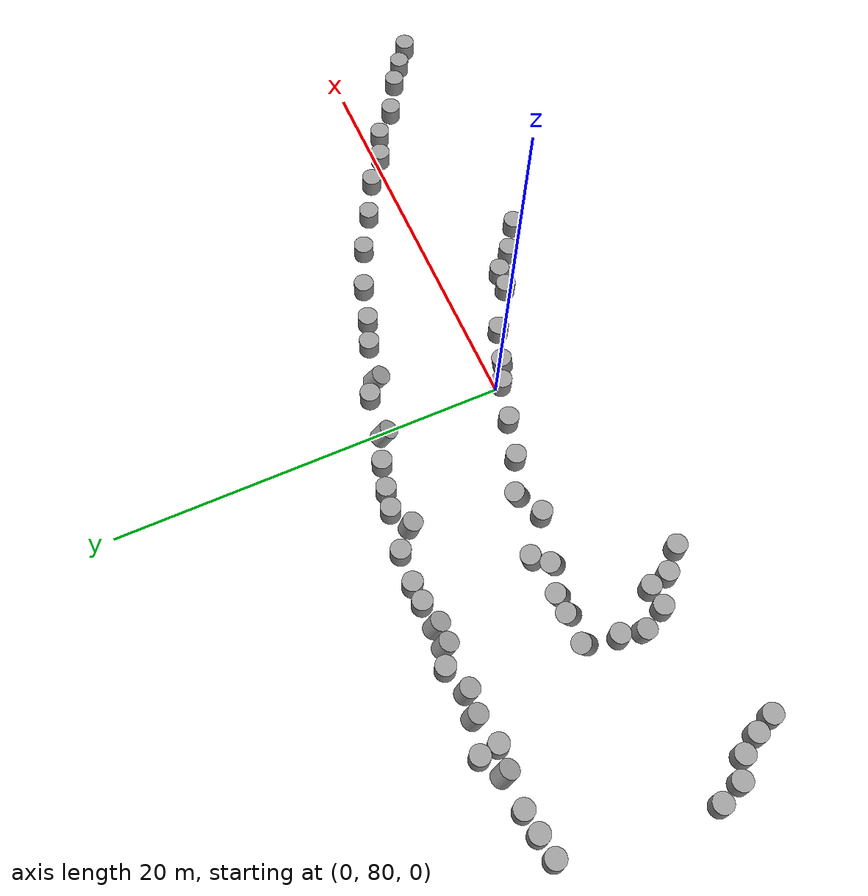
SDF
<sdf version="1.7">
 <world name="default">
  <model name="unit_cylinder_clone_108">
   <pose>21.981 75.3969 0.454309 0.00428 -0.002742 -0.000518</pose>
   <link name="link">
    <inertial>
     <mass>1</mass>
     <inertia><ixx>0.145833</ixx><ixy>0</ixy><ixz>0</ixz><iyy>0.145833</iyy><iyz>0</iyz><izz>0.125</izz></inertia>
    </inertial>
    <collision name="collision">
     <geometry><cylinder><radius>0.5</radius><length>1</length></cylinder></geometry>
    </collision>
    <visual name="visual">
     <geometry><cylinder><radius>0.5</radius><length>1</length></cylinder></geometry>
     <material>
      <script><name>Gazebo/Grey</name><uri>file://media/materials/scripts/gazebo.material</uri></script>
     </material>
    </visual>
   </link>
  </model>
  <model name="unit_cylinder_clone_109">
   <pose>20.9005 76.2129 0.454841 0.004279 -0.002742 -0.000491</pose>
   <link name="link">
    <inertial>
     <mass>1</mass>
     <inertia><ixx>0.145833</ixx><ixy>0</ixy><ixz>0</ixz><iyy>0.145833</iyy><iyz>0</iyz><izz>0.125</izz></inertia>
    </inertial>
    <collision name="collision">
     <geometry><cylinder><radius>0.5</radius><length>1</length></cylinder></geometry>
    </collision>
    <visual name="visual">
     <geometry><cylinder><radius>0.5</radius><length>1</length></cylinder></geometry>
     <material>
      <script><name>Gazebo/Grey</name><uri>file://media/materials/scripts/gazebo.material</uri></script>
     </material>
    </visual>
   </link>
  </model>
  <model name="unit_cylinder_clone_110">
   <pose>19.7918 76.9983 0.455156 0.004291 -0.002747 -0.000468</pose>
   <link name="link">
    <inertial>
     <mass>1</mass>
     <inertia><ixx>0.145833</ixx><ixy>0</ixy><ixz>0</ixz><iyy>0.145833</iyy><iyz>0</iyz><izz>0.125</izz></inertia>
    </inertial>
    <collision name="collision">
     <geometry><cylinder><radius>0.5</radius><length>1</length></cylinder></geometry>
    </collision>
    <visual name="visual">
     <geometry><cylinder><radius>0.5</radius><length>1</length></cylinder></geometry>
     <material>
      <script><name>Gazebo/Grey</name><uri>file://media/materials/scripts/gazebo.material</uri></script>
     </material>
    </visual>
   </link>
  </model>
  <model name="unit_cylinder_clone_111">
   <pose>18.025 77.9763 0.454441 0.004261 -0.002794 -0.000531</pose>
   <link name="link">
    <inertial>
     <mass>1</mass>
     <inertia><ixx>0.145833</ixx><ixy>0</ixy><ixz>0</ixz><iyy>0.145833</iyy><iyz>0</iyz><izz>0.125</izz></inertia>
    </inertial>
    <collision name="collision">
     <geometry><cylinder><radius>0.5</radius><length>1</length></cylinder></geometry>
    </collision>
    <visual name="visual">
     <geometry><cylinder><radius>0.5</radius><length>1</length></cylinder></geometry>
     <material>
      <script><name>Gazebo/Grey</name><uri>file://media/materials/scripts/gazebo.material</uri></script>
     </material>
    </visual>
   </link>
  </model>
  <model name="unit_cylinder_clone_112">
   <pose>16.696 79.2107 0.455997 0.004258 -0.002788 -0.000549</pose>
   <link name="link">
    <inertial>
     <mass>1</mass>
     <inertia><ixx>0.145833</ixx><ixy>0</ixy><ixz>0</ixz><iyy>0.145833</iyy><iyz>0</iyz><izz>0.125</izz></inertia>
    </inertial>
    <collision name="collision">
     <geometry><cylinder><radius>0.5</radius><length>1</length></cylinder></geometry>
    </collision>
    <visual name="visual">
     <geometry><cylinder><radius>0.5</radius><length>1</length></cylinder></geometry>
     <material>
      <script><name>Gazebo/Grey</name><uri>file://media/materials/scripts/gazebo.material</uri></script>
     </material>
    </visual>
   </link>
  </model>
  <model name="unit_cylinder_clone_113">
   <pose>15.3365 79.7585 0.454518 0.004262 -0.002793 -0.000598</pose>
   <link name="link">
    <inertial>
     <mass>1</mass>
     <inertia><ixx>0.145833</ixx><ixy>0</ixy><ixz>0</ixz><iyy>0.145833</iyy><iyz>0</iyz><izz>0.125</izz></inertia>
    </inertial>
    <collision name="collision">
     <geometry><cylinder><radius>0.5</radius><length>1</length></cylinder></geometry>
    </collision>
    <visual name="visual">
     <geometry><cylinder><radius>0.5</radius><length>1</length></cylinder></geometry>
     <material>
      <script><name>Gazebo/Grey</name><uri>file://media/materials/scripts/gazebo.material</uri></script>
     </material>
    </visual>
   </link>
  </model>
  <model name="unit_cylinder_clone_114">
   <pose>13.9497 80.8535 0.464947 0.02121 -0.012268 0.06693</pose>
   <link name="link">
    <inertial>
     <mass>1</mass>
     <inertia><ixx>0.145833</ixx><ixy>0</ixy><ixz>0</ixz><iyy>0.145833</iyy><iyz>0</iyz><izz>0.125</izz></inertia>
    </inertial>
    <collision name="collision">
     <geometry><cylinder><radius>0.5</radius><length>1</length></cylinder></geometry>
    </collision>
    <visual name="visual">
     <geometry><cylinder><radius>0.5</radius><length>1</length></cylinder></geometry>
     <material>
      <script><name>Gazebo/Grey</name><uri>file://media/materials/scripts/gazebo.material</uri></script>
     </material>
    </visual>
   </link>
  </model>
  <model name="unit_cylinder_clone_115">
   <pose>12.0349 81.8268 0.454119 0.004292 -0.002805 -0.000335</pose>
   <link name="link">
    <inertial>
     <mass>1</mass>
     <inertia><ixx>0.145833</ixx><ixy>0</ixy><ixz>0</ixz><iyy>0.145833</iyy><iyz>0</iyz><izz>0.125</izz></inertia>
    </inertial>
    <collision name="collision">
     <geometry><cylinder><radius>0.5</radius><length>1</length></cylinder></geometry>
    </collision>
    <visual name="visual">
     <geometry><cylinder><radius>0.5</radius><length>1</length></cylinder></geometry>
     <material>
      <script><name>Gazebo/Grey</name><uri>file://media/materials/scripts/gazebo.material</uri></script>
     </material>
    </visual>
   </link>
  </model>
  <model name="unit_cylinder_clone_116">
   <pose>10.1111 82.934 0.453853 0.00467 -0.002143 0.001131</pose>
   <link name="link">
    <inertial>
     <mass>1</mass>
     <inertia><ixx>0.145833</ixx><ixy>0</ixy><ixz>0</ixz><iyy>0.145833</iyy><iyz>0</iyz><izz>0.125</izz></inertia>
    </inertial>
    <collision name="collision">
     <geometry><cylinder><radius>0.5</radius><length>1</length></cylinder></geometry>
    </collision>
    <visual name="visual">
     <geometry><cylinder><radius>0.5</radius><length>1</length></cylinder></geometry>
     <material>
      <script><name>Gazebo/Grey</name><uri>file://media/materials/scripts/gazebo.material</uri></script>
     </material>
    </visual>
   </link>
  </model>
  <model name="unit_cylinder_clone_117">
   <pose>7.95155 83.8398 0.453717 0.00449 -0.001961 -0.00254</pose>
   <link name="link">
    <inertial>
     <mass>1</mass>
     <inertia><ixx>0.145833</ixx><ixy>0</ixy><ixz>0</ixz><iyy>0.145833</iyy><iyz>0</iyz><izz>0.125</izz></inertia>
    </inertial>
    <collision name="collision">
     <geometry><cylinder><radius>0.5</radius><length>1</length></cylinder></geometry>
    </collision>
    <visual name="visual">
     <geometry><cylinder><radius>0.5</radius><length>1</length></cylinder></geometry>
     <material>
      <script><name>Gazebo/Grey</name><uri>file://media/materials/scripts/gazebo.material</uri></script>
     </material>
    </visual>
   </link>
  </model>
  <model name="unit_cylinder_clone_118">
   <pose>6.045 84.4184 0.452686 0.004187 -0.001657 -0.037985</pose>
   <link name="link">
    <inertial>
     <mass>1</mass>
     <inertia><ixx>0.145833</ixx><ixy>0</ixy><ixz>0</ixz><iyy>0.145833</iyy><iyz>0</iyz><izz>0.125</izz></inertia>
    </inertial>
    <collision name="collision">
     <geometry><cylinder><radius>0.5</radius><length>1</length></cylinder></geometry>
    </collision>
    <visual name="visual">
     <geometry><cylinder><radius>0.5</radius><length>1</length></cylinder></geometry>
     <material>
      <script><name>Gazebo/Grey</name><uri>file://media/materials/scripts/gazebo.material</uri></script>
     </material>
    </visual>
   </link>
  </model>
  <model name="unit_cylinder_clone_119">
   <pose>4.71415 84.9047 0.452257 0.00407 -0.001759 -0.007313</pose>
   <link name="link">
    <inertial>
     <mass>1</mass>
     <inertia><ixx>0.145833</ixx><ixy>0</ixy><ixz>0</ixz><iyy>0.145833</iyy><iyz>0</iyz><izz>0.125</izz></inertia>
    </inertial>
    <collision name="collision">
     <geometry><cylinder><radius>0.5</radius><length>1</length></cylinder></geometry>
    </collision>
    <visual name="visual">
     <geometry><cylinder><radius>0.5</radius><length>1</length></cylinder></geometry>
     <material>
      <script><name>Gazebo/Grey</name><uri>file://media/materials/scripts/gazebo.material</uri></script>
     </material>
    </visual>
   </link>
  </model>
  <model name="unit_cylinder_clone_120">
   <pose>2.77753 85.333 0.428937 0.468622 -0.187616 -0.062156</pose>
   <link name="link">
    <inertial>
     <mass>1</mass>
     <inertia><ixx>0.145833</ixx><ixy>0</ixy><ixz>0</ixz><iyy>0.145833</iyy><iyz>0</iyz><izz>0.125</izz></inertia>
    </inertial>
    <collision name="collision">
     <geometry><cylinder><radius>0.5</radius><length>1</length></cylinder></geometry>
    </collision>
    <visual name="visual">
     <geometry><cylinder><radius>0.5</radius><length>1</length></cylinder></geometry>
     <material>
      <script><name>Gazebo/Grey</name><uri>file://media/materials/scripts/gazebo.material</uri></script>
     </material>
    </visual>
   </link>
  </model>
  <model name="unit_cylinder_clone_121">
   <pose>1.98412 86.009 0.45199 0.003957 -0.001317 -0.007707</pose>
   <link name="link">
    <inertial>
     <mass>1</mass>
     <inertia><ixx>0.145833</ixx><ixy>0</ixy><ixz>0</ixz><iyy>0.145833</iyy><iyz>0</iyz><izz>0.125</izz></inertia>
    </inertial>
    <collision name="collision">
     <geometry><cylinder><radius>0.5</radius><length>1</length></cylinder></geometry>
    </collision>
    <visual name="visual">
     <geometry><cylinder><radius>0.5</radius><length>1</length></cylinder></geometry>
     <material>
      <script><name>Gazebo/Grey</name><uri>file://media/materials/scripts/gazebo.material</uri></script>
     </material>
    </visual>
   </link>
  </model>
  <model name="unit_cylinder_clone_122">
   <pose>-0.166714 86.1896 0.432368 0.5197 0.021411 -0.252502</pose>
   <link name="link">
    <inertial>
     <mass>1</mass>
     <inertia><ixx>0.145833</ixx><ixy>0</ixy><ixz>0</ixz><iyy>0.145833</iyy><iyz>0</iyz><izz>0.125</izz></inertia>
    </inertial>
    <collision name="collision">
     <geometry><cylinder><radius>0.5</radius><length>1</length></cylinder></geometry>
    </collision>
    <visual name="visual">
     <geometry><cylinder><radius>0.5</radius><length>1</length></cylinder></geometry>
     <material>
      <script><name>Gazebo/Grey</name><uri>file://media/materials/scripts/gazebo.material</uri></script>
     </material>
    </visual>
   </link>
  </model>
  <model name="unit_cylinder_clone_123">
   <pose>-1.58955 86.8966 0.45227 0.004388 -0.000964 -0.000424</pose>
   <link name="link">
    <inertial>
     <mass>1</mass>
     <inertia><ixx>0.145833</ixx><ixy>0</ixy><ixz>0</ixz><iyy>0.145833</iyy><iyz>0</iyz><izz>0.125</izz></inertia>
    </inertial>
    <collision name="collision">
     <geometry><cylinder><radius>0.5</radius><length>1</length></cylinder></geometry>
    </collision>
    <visual name="visual">
     <geometry><cylinder><radius>0.5</radius><length>1</length></cylinder></geometry>
     <material>
      <script><name>Gazebo/Grey</name><uri>file://media/materials/scripts/gazebo.material</uri></script>
     </material>
    </visual>
   </link>
  </model>
  <model name="unit_cylinder_clone_124">
   <pose>2.88555 78.5504 0.451269 0 1e-06 -0.000547</pose>
   <link name="link">
    <inertial>
     <mass>1</mass>
     <inertia><ixx>0.145833</ixx><ixy>0</ixy><ixz>0</ixz><iyy>0.145833</iyy><iyz>0</iyz><izz>0.125</izz></inertia>
    </inertial>
    <collision name="collision">
     <geometry><cylinder><radius>0.5</radius><length>1</length></cylinder></geometry>
    </collision>
    <visual name="visual">
     <geometry><cylinder><radius>0.5</radius><length>1</length></cylinder></geometry>
     <material>
      <script><name>Gazebo/Grey</name><uri>file://media/materials/scripts/gazebo.material</uri></script>
     </material>
    </visual>
   </link>
  </model>
  <model name="unit_cylinder_clone_125">
   <pose>5.03777 77.1231 0.451276 -3e-06 -2e-06 -0.012129</pose>
   <link name="link">
    <inertial>
     <mass>1</mass>
     <inertia><ixx>0.145833</ixx><ixy>0</ixy><ixz>0</ixz><iyy>0.145833</iyy><iyz>0</iyz><izz>0.125</izz></inertia>
    </inertial>
    <collision name="collision">
     <geometry><cylinder><radius>0.5</radius><length>1</length></cylinder></geometry>
    </collision>
    <visual name="visual">
     <geometry><cylinder><radius>0.5</radius><length>1</length></cylinder></geometry>
     <material>
      <script><name>Gazebo/Grey</name><uri>file://media/materials/scripts/gazebo.material</uri></script>
     </material>
    </visual>
   </link>
  </model>
  <model name="unit_cylinder_clone_126">
   <pose>6.03053 76.9959 0.451275 4e-06 -5e-06 -0.000135</pose>
   <link name="link">
    <inertial>
     <mass>1</mass>
     <inertia><ixx>0.145833</ixx><ixy>0</ixy><ixz>0</ixz><iyy>0.145833</iyy><iyz>0</iyz><izz>0.125</izz></inertia>
    </inertial>
    <collision name="collision">
     <geometry><cylinder><radius>0.5</radius><length>1</length></cylinder></geometry>
    </collision>
    <visual name="visual">
     <geometry><cylinder><radius>0.5</radius><length>1</length></cylinder></geometry>
     <material>
      <script><name>Gazebo/Grey</name><uri>file://media/materials/scripts/gazebo.material</uri></script>
     </material>
    </visual>
   </link>
  </model>
  <model name="unit_cylinder_clone_127">
   <pose>6.99996 76 0.451269 5e-06 -5e-06 -0.000493</pose>
   <link name="link">
    <inertial>
     <mass>1</mass>
     <inertia><ixx>0.145833</ixx><ixy>0</ixy><ixz>0</ixz><iyy>0.145833</iyy><iyz>0</iyz><izz>0.125</izz></inertia>
    </inertial>
    <collision name="collision">
     <geometry><cylinder><radius>0.5</radius><length>1</length></cylinder></geometry>
    </collision>
    <visual name="visual">
     <geometry><cylinder><radius>0.5</radius><length>1</length></cylinder></geometry>
     <material>
      <script><name>Gazebo/Grey</name><uri>file://media/materials/scripts/gazebo.material</uri></script>
     </material>
    </visual>
   </link>
  </model>
  <model name="unit_cylinder_clone_128">
   <pose>8.44142 75.039 0.451269 1e-06 -3e-06 -0.000391</pose>
   <link name="link">
    <inertial>
     <mass>1</mass>
     <inertia><ixx>0.145833</ixx><ixy>0</ixy><ixz>0</ixz><iyy>0.145833</iyy><iyz>0</iyz><izz>0.125</izz></inertia>
    </inertial>
    <collision name="collision">
     <geometry><cylinder><radius>0.5</radius><length>1</length></cylinder></geometry>
    </collision>
    <visual name="visual">
     <geometry><cylinder><radius>0.5</radius><length>1</length></cylinder></geometry>
     <material>
      <script><name>Gazebo/Grey</name><uri>file://media/materials/scripts/gazebo.material</uri></script>
     </material>
    </visual>
   </link>
  </model>
  <model name="unit_cylinder_clone_130">
   <pose>1.10319 79.1853 0.504434 -0.127055 0.067012 0.082036</pose>
   <link name="link">
    <inertial>
     <mass>1</mass>
     <inertia><ixx>0.145833</ixx><ixy>0</ixy><ixz>0</ixz><iyy>0.145833</iyy><iyz>0</iyz><izz>0.125</izz></inertia>
    </inertial>
    <collision name="collision">
     <geometry><cylinder><radius>0.5</radius><length>1</length></cylinder></geometry>
    </collision>
    <visual name="visual">
     <geometry><cylinder><radius>0.5</radius><length>1</length></cylinder></geometry>
     <material>
      <script><name>Gazebo/Grey</name><uri>file://media/materials/scripts/gazebo.material</uri></script>
     </material>
    </visual>
   </link>
  </model>
  <model name="unit_cylinder_clone_131">
   <pose>0.07034 79.7101 0.451268 -9e-06 1e-06 -0.42865</pose>
   <link name="link">
    <inertial>
     <mass>1</mass>
     <inertia><ixx>0.145833</ixx><ixy>0</ixy><ixz>0</ixz><iyy>0.145833</iyy><iyz>0</iyz><izz>0.125</izz></inertia>
    </inertial>
    <collision name="collision">
     <geometry><cylinder><radius>0.5</radius><length>1</length></cylinder></geometry>
    </collision>
    <visual name="visual">
     <geometry><cylinder><radius>0.5</radius><length>1</length></cylinder></geometry>
     <material>
      <script><name>Gazebo/Grey</name><uri>file://media/materials/scripts/gazebo.material</uri></script>
     </material>
    </visual>
   </link>
  </model>
  <model name="unit_cylinder_clone_132">
   <pose>-1.91471 80.2839 0.451275 3.1e-05 1.5e-05 4.9e-05</pose>
   <link name="link">
    <inertial>
     <mass>1</mass>
     <inertia><ixx>0.145833</ixx><ixy>0</ixy><ixz>0</ixz><iyy>0.145833</iyy><iyz>0</iyz><izz>0.125</izz></inertia>
    </inertial>
    <collision name="collision">
     <geometry><cylinder><radius>0.5</radius><length>1</length></cylinder></geometry>
    </collision>
    <visual name="visual">
     <geometry><cylinder><radius>0.5</radius><length>1</length></cylinder></geometry>
     <material>
      <script><name>Gazebo/Grey</name><uri>file://media/materials/scripts/gazebo.material</uri></script>
     </material>
    </visual>
   </link>
  </model>
  <model name="unit_cylinder_clone_133">
   <pose>-3.87423 80.8473 0.451267 1.7e-05 -9e-06 -0.000427</pose>
   <link name="link">
    <inertial>
     <mass>1</mass>
     <inertia><ixx>0.145833</ixx><ixy>0</ixy><ixz>0</ixz><iyy>0.145833</iyy><iyz>0</iyz><izz>0.125</izz></inertia>
    </inertial>
    <collision name="collision">
     <geometry><cylinder><radius>0.5</radius><length>1</length></cylinder></geometry>
    </collision>
    <visual name="visual">
     <geometry><cylinder><radius>0.5</radius><length>1</length></cylinder></geometry>
     <material>
      <script><name>Gazebo/Grey</name><uri>file://media/materials/scripts/gazebo.material</uri></script>
     </material>
    </visual>
   </link>
  </model>
  <model name="unit_cylinder_clone_134">
   <pose>-5.6357 81.6036 0.39246 -0.347333 0.0722 0.023567</pose>
   <link name="link">
    <inertial>
     <mass>1</mass>
     <inertia><ixx>0.145833</ixx><ixy>0</ixy><ixz>0</ixz><iyy>0.145833</iyy><iyz>0</iyz><izz>0.125</izz></inertia>
    </inertial>
    <collision name="collision">
     <geometry><cylinder><radius>0.5</radius><length>1</length></cylinder></geometry>
    </collision>
    <visual name="visual">
     <geometry><cylinder><radius>0.5</radius><length>1</length></cylinder></geometry>
     <material>
      <script><name>Gazebo/Grey</name><uri>file://media/materials/scripts/gazebo.material</uri></script>
     </material>
    </visual>
   </link>
  </model>
  <model name="unit_cylinder_clone_135">
   <pose>-7.00006 80.9999 0.451264 5e-06 -2e-06 -0.000535</pose>
   <link name="link">
    <inertial>
     <mass>1</mass>
     <inertia><ixx>0.145833</ixx><ixy>0</ixy><ixz>0</ixz><iyy>0.145833</iyy><iyz>0</iyz><izz>0.125</izz></inertia>
    </inertial>
    <collision name="collision">
     <geometry><cylinder><radius>0.5</radius><length>1</length></cylinder></geometry>
    </collision>
    <visual name="visual">
     <geometry><cylinder><radius>0.5</radius><length>1</length></cylinder></geometry>
     <material>
      <script><name>Gazebo/Grey</name><uri>file://media/materials/scripts/gazebo.material</uri></script>
     </material>
    </visual>
   </link>
  </model>
  <model name="unit_cylinder_clone_136">
   <pose>-8.75362 82.3632 0.348646 -0.220726 0.039599 -0.027355</pose>
   <link name="link">
    <inertial>
     <mass>1</mass>
     <inertia><ixx>0.145833</ixx><ixy>0</ixy><ixz>0</ixz><iyy>0.145833</iyy><iyz>0</iyz><izz>0.125</izz></inertia>
    </inertial>
    <collision name="collision">
     <geometry><cylinder><radius>0.5</radius><length>1</length></cylinder></geometry>
    </collision>
    <visual name="visual">
     <geometry><cylinder><radius>0.5</radius><length>1</length></cylinder></geometry>
     <material>
      <script><name>Gazebo/Grey</name><uri>file://media/materials/scripts/gazebo.material</uri></script>
     </material>
    </visual>
   </link>
  </model>
  <model name="unit_cylinder_clone_137">
   <pose>-10.8686 82.0655 0.393117 -0.342404 -0.101969 -0.282925</pose>
   <link name="link">
    <inertial>
     <mass>1</mass>
     <inertia><ixx>0.145833</ixx><ixy>0</ixy><ixz>0</ixz><iyy>0.145833</iyy><iyz>0</iyz><izz>0.125</izz></inertia>
    </inertial>
    <collision name="collision">
     <geometry><cylinder><radius>0.5</radius><length>1</length></cylinder></geometry>
    </collision>
    <visual name="visual">
     <geometry><cylinder><radius>0.5</radius><length>1</length></cylinder></geometry>
     <material>
      <script><name>Gazebo/Grey</name><uri>file://media/materials/scripts/gazebo.material</uri></script>
     </material>
    </visual>
   </link>
  </model>
  <model name="unit_cylinder_clone_139">
   <pose>-13.7209 80.4212 0.451242 5e-06 -1e-06 -0.000553</pose>
   <link name="link">
    <inertial>
     <mass>1</mass>
     <inertia><ixx>0.145833</ixx><ixy>0</ixy><ixz>0</ixz><iyy>0.145833</iyy><iyz>0</iyz><izz>0.125</izz></inertia>
    </inertial>
    <collision name="collision">
     <geometry><cylinder><radius>0.5</radius><length>1</length></cylinder></geometry>
    </collision>
    <visual name="visual">
     <geometry><cylinder><radius>0.5</radius><length>1</length></cylinder></geometry>
     <material>
      <script><name>Gazebo/Grey</name><uri>file://media/materials/scripts/gazebo.material</uri></script>
     </material>
    </visual>
   </link>
  </model>
  <model name="unit_cylinder_clone_140">
   <pose>-13.9643 79.273 0.523849 0.099768 -0.12323 -0.127763</pose>
   <link name="link">
    <inertial>
     <mass>1</mass>
     <inertia><ixx>0.145833</ixx><ixy>0</ixy><ixz>0</ixz><iyy>0.145833</iyy><iyz>0</iyz><izz>0.125</izz></inertia>
    </inertial>
    <collision name="collision">
     <geometry><cylinder><radius>0.5</radius><length>1</length></cylinder></geometry>
    </collision>
    <visual name="visual">
     <geometry><cylinder><radius>0.5</radius><length>1</length></cylinder></geometry>
     <material>
      <script><name>Gazebo/Grey</name><uri>file://media/materials/scripts/gazebo.material</uri></script>
     </material>
    </visual>
   </link>
  </model>
  <model name="unit_cylinder_clone_141">
   <pose>-13.3304 77.9868 0.451244 -6e-06 6e-06 -0.009984</pose>
   <link name="link">
    <inertial>
     <mass>1</mass>
     <inertia><ixx>0.145833</ixx><ixy>0</ixy><ixz>0</ixz><iyy>0.145833</iyy><iyz>0</iyz><izz>0.125</izz></inertia>
    </inertial>
    <collision name="collision">
     <geometry><cylinder><radius>0.5</radius><length>1</length></cylinder></geometry>
    </collision>
    <visual name="visual">
     <geometry><cylinder><radius>0.5</radius><length>1</length></cylinder></geometry>
     <material>
      <script><name>Gazebo/Grey</name><uri>file://media/materials/scripts/gazebo.material</uri></script>
     </material>
    </visual>
   </link>
  </model>
  <model name="unit_cylinder_clone_142">
   <pose>-12.2668 78.0379 0.45124 3e-06 -4e-06 0.233675</pose>
   <link name="link">
    <inertial>
     <mass>1</mass>
     <inertia><ixx>0.145833</ixx><ixy>0</ixy><ixz>0</ixz><iyy>0.145833</iyy><iyz>0</iyz><izz>0.125</izz></inertia>
    </inertial>
    <collision name="collision">
     <geometry><cylinder><radius>0.5</radius><length>1</length></cylinder></geometry>
    </collision>
    <visual name="visual">
     <geometry><cylinder><radius>0.5</radius><length>1</length></cylinder></geometry>
     <material>
      <script><name>Gazebo/Grey</name><uri>file://media/materials/scripts/gazebo.material</uri></script>
     </material>
    </visual>
   </link>
  </model>
  <model name="unit_cylinder_clone_143">
   <pose>-12 76.9999 0.451238 1e-06 -3e-06 -0.000454</pose>
   <link name="link">
    <inertial>
     <mass>1</mass>
     <inertia><ixx>0.145833</ixx><ixy>0</ixy><ixz>0</ixz><iyy>0.145833</iyy><iyz>0</iyz><izz>0.125</izz></inertia>
    </inertial>
    <collision name="collision">
     <geometry><cylinder><radius>0.5</radius><length>1</length></cylinder></geometry>
    </collision>
    <visual name="visual">
     <geometry><cylinder><radius>0.5</radius><length>1</length></cylinder></geometry>
     <material>
      <script><name>Gazebo/Grey</name><uri>file://media/materials/scripts/gazebo.material</uri></script>
     </material>
    </visual>
   </link>
  </model>
  <model name="unit_cylinder_clone_144">
   <pose>-11 75.9998 0.451252 4e-06 -3e-06 -0.00038</pose>
   <link name="link">
    <inertial>
     <mass>1</mass>
     <inertia><ixx>0.145833</ixx><ixy>0</ixy><ixz>0</ixz><iyy>0.145833</iyy><iyz>0</iyz><izz>0.125</izz></inertia>
    </inertial>
    <collision name="collision">
     <geometry><cylinder><radius>0.5</radius><length>1</length></cylinder></geometry>
    </collision>
    <visual name="visual">
     <geometry><cylinder><radius>0.5</radius><length>1</length></cylinder></geometry>
     <material>
      <script><name>Gazebo/Grey</name><uri>file://media/materials/scripts/gazebo.material</uri></script>
     </material>
    </visual>
   </link>
  </model>
  <model name="unit_cylinder_clone_138">
   <pose>-13.4113 82.0123 0.41957 -0.452542 -0.073767 -0.155194</pose>
   <link name="link">
    <inertial>
     <mass>1</mass>
     <inertia><ixx>0.145833</ixx><ixy>0</ixy><ixz>0</ixz><iyy>0.145833</iyy><iyz>0</iyz><izz>0.125</izz></inertia>
    </inertial>
    <collision name="collision">
     <geometry><cylinder><radius>0.5</radius><length>1</length></cylinder></geometry>
    </collision>
    <visual name="visual">
     <geometry><cylinder><radius>0.5</radius><length>1</length></cylinder></geometry>
     <material>
      <script><name>Gazebo/Grey</name><uri>file://media/materials/scripts/gazebo.material</uri></script>
     </material>
    </visual>
   </link>
  </model>
  <model name="unit_cylinder_clone_153">
   <pose>-11.871 82.0284 0.407661 -0.409185 -0.004929 -0.016119</pose>
   <link name="link">
    <inertial>
     <mass>1</mass>
     <inertia><ixx>0.145833</ixx><ixy>0</ixy><ixz>0</ixz><iyy>0.145833</iyy><iyz>0</iyz><izz>0.125</izz></inertia>
    </inertial>
    <collision name="collision">
     <geometry><cylinder><radius>0.5</radius><length>1</length></cylinder></geometry>
    </collision>
    <visual name="visual">
     <geometry><cylinder><radius>0.5</radius><length>1</length></cylinder></geometry>
     <material>
      <script><name>Gazebo/Grey</name><uri>file://media/materials/scripts/gazebo.material</uri></script>
     </material>
    </visual>
   </link>
  </model>
  <model name="unit_cylinder_clone_154">
   <pose>-9.46814 81.6514 0.561346 -0.356889 0.131077 0.393239</pose>
   <link name="link">
    <inertial>
     <mass>1</mass>
     <inertia><ixx>0.145833</ixx><ixy>0</ixy><ixz>0</ixz><iyy>0.145833</iyy><iyz>0</iyz><izz>0.125</izz></inertia>
    </inertial>
    <collision name="collision">
     <geometry><cylinder><radius>0.5</radius><length>1</length></cylinder></geometry>
    </collision>
    <visual name="visual">
     <geometry><cylinder><radius>0.5</radius><length>1</length></cylinder></geometry>
     <material>
      <script><name>Gazebo/Grey</name><uri>file://media/materials/scripts/gazebo.material</uri></script>
     </material>
    </visual>
   </link>
  </model>
  <model name="unit_cylinder_clone_155">
   <pose>-2.95789 87.2776 0.452656 0.004462 -0.000973 -0.000426</pose>
   <link name="link">
    <inertial>
     <mass>1</mass>
     <inertia><ixx>0.145833</ixx><ixy>0</ixy><ixz>0</ixz><iyy>0.145833</iyy><iyz>0</iyz><izz>0.125</izz></inertia>
    </inertial>
    <collision name="collision">
     <geometry><cylinder><radius>0.5</radius><length>1</length></cylinder></geometry>
    </collision>
    <visual name="visual">
     <geometry><cylinder><radius>0.5</radius><length>1</length></cylinder></geometry>
     <material>
      <script><name>Gazebo/Grey</name><uri>file://media/materials/scripts/gazebo.material</uri></script>
     </material>
    </visual>
   </link>
  </model>
  <model name="unit_cylinder_clone_156">
   <pose>-4.00049 87.486 0.45256 0.004454 -0.000976 -0.000419</pose>
   <link name="link">
    <inertial>
     <mass>1</mass>
     <inertia><ixx>0.145833</ixx><ixy>0</ixy><ixz>0</ixz><iyy>0.145833</iyy><iyz>0</iyz><izz>0.125</izz></inertia>
    </inertial>
    <collision name="collision">
     <geometry><cylinder><radius>0.5</radius><length>1</length></cylinder></geometry>
    </collision>
    <visual name="visual">
     <geometry><cylinder><radius>0.5</radius><length>1</length></cylinder></geometry>
     <material>
      <script><name>Gazebo/Grey</name><uri>file://media/materials/scripts/gazebo.material</uri></script>
     </material>
    </visual>
   </link>
  </model>
  <model name="unit_cylinder_clone_157">
   <pose>-5.02602 86.9019 0.348529 0.218478 -0.049286 0.003265</pose>
   <link name="link">
    <inertial>
     <mass>1</mass>
     <inertia><ixx>0.145833</ixx><ixy>0</ixy><ixz>0</ixz><iyy>0.145833</iyy><iyz>0</iyz><izz>0.125</izz></inertia>
    </inertial>
    <collision name="collision">
     <geometry><cylinder><radius>0.5</radius><length>1</length></cylinder></geometry>
    </collision>
    <visual name="visual">
     <geometry><cylinder><radius>0.5</radius><length>1</length></cylinder></geometry>
     <material>
      <script><name>Gazebo/Grey</name><uri>file://media/materials/scripts/gazebo.material</uri></script>
     </material>
    </visual>
   </link>
  </model>
  <model name="unit_cylinder_clone_158">
   <pose>-6.11928 87.8881 0.452291 0.004442 -0.000976 -0.000482</pose>
   <link name="link">
    <inertial>
     <mass>1</mass>
     <inertia><ixx>0.145833</ixx><ixy>0</ixy><ixz>0</ixz><iyy>0.145833</iyy><iyz>0</iyz><izz>0.125</izz></inertia>
    </inertial>
    <collision name="collision">
     <geometry><cylinder><radius>0.5</radius><length>1</length></cylinder></geometry>
    </collision>
    <visual name="visual">
     <geometry><cylinder><radius>0.5</radius><length>1</length></cylinder></geometry>
     <material>
      <script><name>Gazebo/Grey</name><uri>file://media/materials/scripts/gazebo.material</uri></script>
     </material>
    </visual>
   </link>
  </model>
  <model name="unit_cylinder_clone_159">
   <pose>-7.76381 88.0127 0.451893 0.004468 -0.000262 -0.000462</pose>
   <link name="link">
    <inertial>
     <mass>1</mass>
     <inertia><ixx>0.145833</ixx><ixy>0</ixy><ixz>0</ixz><iyy>0.145833</iyy><iyz>0</iyz><izz>0.125</izz></inertia>
    </inertial>
    <collision name="collision">
     <geometry><cylinder><radius>0.5</radius><length>1</length></cylinder></geometry>
    </collision>
    <visual name="visual">
     <geometry><cylinder><radius>0.5</radius><length>1</length></cylinder></geometry>
     <material>
      <script><name>Gazebo/Grey</name><uri>file://media/materials/scripts/gazebo.material</uri></script>
     </material>
    </visual>
   </link>
  </model>
  <model name="unit_cylinder_clone_160">
   <pose>-8.76554 87.9709 0.451433 0.004329 -0.00026 -0.00048</pose>
   <link name="link">
    <inertial>
     <mass>1</mass>
     <inertia><ixx>0.145833</ixx><ixy>0</ixy><ixz>0</ixz><iyy>0.145833</iyy><iyz>0</iyz><izz>0.125</izz></inertia>
    </inertial>
    <collision name="collision">
     <geometry><cylinder><radius>0.5</radius><length>1</length></cylinder></geometry>
    </collision>
    <visual name="visual">
     <geometry><cylinder><radius>0.5</radius><length>1</length></cylinder></geometry>
     <material>
      <script><name>Gazebo/Grey</name><uri>file://media/materials/scripts/gazebo.material</uri></script>
     </material>
    </visual>
   </link>
  </model>
  <model name="unit_cylinder_clone_161">
   <pose>-9.96098 87.7868 0.402139 0.388003 -0.020731 -0.00842</pose>
   <link name="link">
    <inertial>
     <mass>1</mass>
     <inertia><ixx>0.145833</ixx><ixy>0</ixy><ixz>0</ixz><iyy>0.145833</iyy><iyz>0</iyz><izz>0.125</izz></inertia>
    </inertial>
    <collision name="collision">
     <geometry><cylinder><radius>0.5</radius><length>1</length></cylinder></geometry>
    </collision>
    <visual name="visual">
     <geometry><cylinder><radius>0.5</radius><length>1</length></cylinder></geometry>
     <material>
      <script><name>Gazebo/Grey</name><uri>file://media/materials/scripts/gazebo.material</uri></script>
     </material>
    </visual>
   </link>
  </model>
  <model name="unit_cylinder_clone_162">
   <pose>-10.9671 87.8101 0.390746 0.348569 -0.009558 -0.0328</pose>
   <link name="link">
    <inertial>
     <mass>1</mass>
     <inertia><ixx>0.145833</ixx><ixy>0</ixy><ixz>0</ixz><iyy>0.145833</iyy><iyz>0</iyz><izz>0.125</izz></inertia>
    </inertial>
    <collision name="collision">
     <geometry><cylinder><radius>0.5</radius><length>1</length></cylinder></geometry>
    </collision>
    <visual name="visual">
     <geometry><cylinder><radius>0.5</radius><length>1</length></cylinder></geometry>
     <material>
      <script><name>Gazebo/Grey</name><uri>file://media/materials/scripts/gazebo.material</uri></script>
     </material>
    </visual>
   </link>
  </model>
  <model name="unit_cylinder_clone_163">
   <pose>-11.9362 88.247 0.451835 0.004468 -0.000115 -0.034428</pose>
   <link name="link">
    <inertial>
     <mass>1</mass>
     <inertia><ixx>0.145833</ixx><ixy>0</ixy><ixz>0</ixz><iyy>0.145833</iyy><iyz>0</iyz><izz>0.125</izz></inertia>
    </inertial>
    <collision name="collision">
     <geometry><cylinder><radius>0.5</radius><length>1</length></cylinder></geometry>
    </collision>
    <visual name="visual">
     <geometry><cylinder><radius>0.5</radius><length>1</length></cylinder></geometry>
     <material>
      <script><name>Gazebo/Grey</name><uri>file://media/materials/scripts/gazebo.material</uri></script>
     </material>
    </visual>
   </link>
  </model>
  <model name="unit_cylinder_clone_164">
   <pose>-13.2319 87.7697 0.357997 0.249253 -0.012705 -0.009226</pose>
   <link name="link">
    <inertial>
     <mass>1</mass>
     <inertia><ixx>0.145833</ixx><ixy>0</ixy><ixz>0</ixz><iyy>0.145833</iyy><iyz>0</iyz><izz>0.125</izz></inertia>
    </inertial>
    <collision name="collision">
     <geometry><cylinder><radius>0.5</radius><length>1</length></cylinder></geometry>
    </collision>
    <visual name="visual">
     <geometry><cylinder><radius>0.5</radius><length>1</length></cylinder></geometry>
     <material>
      <script><name>Gazebo/Grey</name><uri>file://media/materials/scripts/gazebo.material</uri></script>
     </material>
    </visual>
   </link>
  </model>
  <model name="unit_cylinder_clone_165">
   <pose>-14.4017 87.9382 0.373736 0.294352 -0.018377 0.001447</pose>
   <link name="link">
    <inertial>
     <mass>1</mass>
     <inertia><ixx>0.145833</ixx><ixy>0</ixy><ixz>0</ixz><iyy>0.145833</iyy><iyz>0</iyz><izz>0.125</izz></inertia>
    </inertial>
    <collision name="collision">
     <geometry><cylinder><radius>0.5</radius><length>1</length></cylinder></geometry>
    </collision>
    <visual name="visual">
     <geometry><cylinder><radius>0.5</radius><length>1</length></cylinder></geometry>
     <material>
      <script><name>Gazebo/Grey</name><uri>file://media/materials/scripts/gazebo.material</uri></script>
     </material>
    </visual>
   </link>
  </model>
  <model name="unit_cylinder_clone_166">
   <pose>-15.9155 87.5071 0.249992 -2e-06 -2e-06 -5e-05</pose>
   <link name="link">
    <inertial>
     <mass>1</mass>
     <inertia><ixx>0.145833</ixx><ixy>0</ixy><ixz>0</ixz><iyy>0.145833</iyy><iyz>0</iyz><izz>0.125</izz></inertia>
    </inertial>
    <collision name="collision">
     <geometry><cylinder><radius>0.5</radius><length>1</length></cylinder></geometry>
    </collision>
    <visual name="visual">
     <geometry><cylinder><radius>0.5</radius><length>1</length></cylinder></geometry>
     <material>
      <script><name>Gazebo/Grey</name><uri>file://media/materials/scripts/gazebo.material</uri></script>
     </material>
    </visual>
   </link>
  </model>
  <model name="unit_cylinder_clone_167">
   <pose>-16.0857 88.5015 0.452867 0.004679 0.000817 -0.000255</pose>
   <link name="link">
    <inertial>
     <mass>1</mass>
     <inertia><ixx>0.145833</ixx><ixy>0</ixy><ixz>0</ixz><iyy>0.145833</iyy><iyz>0</iyz><izz>0.125</izz></inertia>
    </inertial>
    <collision name="collision">
     <geometry><cylinder><radius>0.5</radius><length>1</length></cylinder></geometry>
    </collision>
    <visual name="visual">
     <geometry><cylinder><radius>0.5</radius><length>1</length></cylinder></geometry>
     <material>
      <script><name>Gazebo/Grey</name><uri>file://media/materials/scripts/gazebo.material</uri></script>
     </material>
    </visual>
   </link>
  </model>
  <model name="unit_cylinder_clone_168">
   <pose>-17.1392 87.7839 0.413868 0.428777 0.068521 0.023955</pose>
   <link name="link">
    <inertial>
     <mass>1</mass>
     <inertia><ixx>0.145833</ixx><ixy>0</ixy><ixz>0</ixz><iyy>0.145833</iyy><iyz>0</iyz><izz>0.125</izz></inertia>
    </inertial>
    <collision name="collision">
     <geometry><cylinder><radius>0.5</radius><length>1</length></cylinder></geometry>
    </collision>
    <visual name="visual">
     <geometry><cylinder><radius>0.5</radius><length>1</length></cylinder></geometry>
     <material>
      <script><name>Gazebo/Grey</name><uri>file://media/materials/scripts/gazebo.material</uri></script>
     </material>
    </visual>
   </link>
  </model>
  <model name="unit_cylinder_clone_169">
   <pose>-18.8593 87.7475 0.451588 0.004388 0.000769 -0.000608</pose>
   <link name="link">
    <inertial>
     <mass>1</mass>
     <inertia><ixx>0.145833</ixx><ixy>0</ixy><ixz>0</ixz><iyy>0.145833</iyy><iyz>0</iyz><izz>0.125</izz></inertia>
    </inertial>
    <collision name="collision">
     <geometry><cylinder><radius>0.5</radius><length>1</length></cylinder></geometry>
    </collision>
    <visual name="visual">
     <geometry><cylinder><radius>0.5</radius><length>1</length></cylinder></geometry>
     <material>
      <script><name>Gazebo/Grey</name><uri>file://media/materials/scripts/gazebo.material</uri></script>
     </material>
    </visual>
   </link>
  </model>
  <model name="unit_cylinder_clone_170">
   <pose>-19.9997 87.5879 0.451766 0.004449 0.000777 -0.000563</pose>
   <link name="link">
    <inertial>
     <mass>1</mass>
     <inertia><ixx>0.145833</ixx><ixy>0</ixy><ixz>0</ixz><iyy>0.145833</iyy><iyz>0</iyz><izz>0.125</izz></inertia>
    </inertial>
    <collision name="collision">
     <geometry><cylinder><radius>0.5</radius><length>1</length></cylinder></geometry>
    </collision>
    <visual name="visual">
     <geometry><cylinder><radius>0.5</radius><length>1</length></cylinder></geometry>
     <material>
      <script><name>Gazebo/Grey</name><uri>file://media/materials/scripts/gazebo.material</uri></script>
     </material>
    </visual>
   </link>
  </model>
  <model name="unit_cylinder_clone_171">
   <pose>-21.1597 87.4123 0.451886 0.004482 0.00079 -0.000567</pose>
   <link name="link">
    <inertial>
     <mass>1</mass>
     <inertia><ixx>0.145833</ixx><ixy>0</ixy><ixz>0</ixz><iyy>0.145833</iyy><iyz>0</iyz><izz>0.125</izz></inertia>
    </inertial>
    <collision name="collision">
     <geometry><cylinder><radius>0.5</radius><length>1</length></cylinder></geometry>
    </collision>
    <visual name="visual">
     <geometry><cylinder><radius>0.5</radius><length>1</length></cylinder></geometry>
     <material>
      <script><name>Gazebo/Grey</name><uri>file://media/materials/scripts/gazebo.material</uri></script>
     </material>
    </visual>
   </link>
  </model>
  <model name="unit_cylinder_clone_172">
   <pose>-21.994 79.9041 0.45128 -2.2e-05 -1e-05 -0.000767</pose>
   <link name="link">
    <inertial>
     <mass>1</mass>
     <inertia><ixx>0.145833</ixx><ixy>0</ixy><ixz>0</ixz><iyy>0.145833</iyy><iyz>0</iyz><izz>0.125</izz></inertia>
    </inertial>
    <collision name="collision">
     <geometry><cylinder><radius>0.5</radius><length>1</length></cylinder></geometry>
    </collision>
    <visual name="visual">
     <geometry><cylinder><radius>0.5</radius><length>1</length></cylinder></geometry>
     <material>
      <script><name>Gazebo/Grey</name><uri>file://media/materials/scripts/gazebo.material</uri></script>
     </material>
    </visual>
   </link>
  </model>
  <model name="unit_cylinder_clone_173">
   <pose>-21.5141 78.684 0.451285 -2e-06 -2e-05 -0.000582</pose>
   <link name="link">
    <inertial>
     <mass>1</mass>
     <inertia><ixx>0.145833</ixx><ixy>0</ixy><ixz>0</ixz><iyy>0.145833</iyy><iyz>0</iyz><izz>0.125</izz></inertia>
    </inertial>
    <collision name="collision">
     <geometry><cylinder><radius>0.5</radius><length>1</length></cylinder></geometry>
    </collision>
    <visual name="visual">
     <geometry><cylinder><radius>0.5</radius><length>1</length></cylinder></geometry>
     <material>
      <script><name>Gazebo/Grey</name><uri>file://media/materials/scripts/gazebo.material</uri></script>
     </material>
    </visual>
   </link>
  </model>
  <model name="unit_cylinder_clone_174">
   <pose>-20.5851 77.9998 0.451298 1.1e-05 -5e-06 -0.000787</pose>
   <link name="link">
    <inertial>
     <mass>1</mass>
     <inertia><ixx>0.145833</ixx><ixy>0</ixy><ixz>0</ixz><iyy>0.145833</iyy><iyz>0</iyz><izz>0.125</izz></inertia>
    </inertial>
    <collision name="collision">
     <geometry><cylinder><radius>0.5</radius><length>1</length></cylinder></geometry>
    </collision>
    <visual name="visual">
     <geometry><cylinder><radius>0.5</radius><length>1</length></cylinder></geometry>
     <material>
      <script><name>Gazebo/Grey</name><uri>file://media/materials/scripts/gazebo.material</uri></script>
     </material>
    </visual>
   </link>
  </model>
  <model name="unit_cylinder_clone_175">
   <pose>-20 76.9999 0.451303 -1.2e-05 1.1e-05 -0.000714</pose>
   <link name="link">
    <inertial>
     <mass>1</mass>
     <inertia><ixx>0.145833</ixx><ixy>0</ixy><ixz>0</ixz><iyy>0.145833</iyy><iyz>0</iyz><izz>0.125</izz></inertia>
    </inertial>
    <collision name="collision">
     <geometry><cylinder><radius>0.5</radius><length>1</length></cylinder></geometry>
    </collision>
    <visual name="visual">
     <geometry><cylinder><radius>0.5</radius><length>1</length></cylinder></geometry>
     <material>
      <script><name>Gazebo/Grey</name><uri>file://media/materials/scripts/gazebo.material</uri></script>
     </material>
    </visual>
   </link>
  </model>
  <model name="unit_cylinder_clone_176">
   <pose>-19.561 75.9999 0.451303 7e-06 7e-06 -0.000867</pose>
   <link name="link">
    <inertial>
     <mass>1</mass>
     <inertia><ixx>0.145833</ixx><ixy>0</ixy><ixz>0</ixz><iyy>0.145833</iyy><iyz>0</iyz><izz>0.125</izz></inertia>
    </inertial>
    <collision name="collision">
     <geometry><cylinder><radius>0.5</radius><length>1</length></cylinder></geometry>
    </collision>
    <visual name="visual">
     <geometry><cylinder><radius>0.5</radius><length>1</length></cylinder></geometry>
     <material>
      <script><name>Gazebo/Grey</name><uri>file://media/materials/scripts/gazebo.material</uri></script>
     </material>
    </visual>
   </link>
  </model>
 </world>
</sdf>
